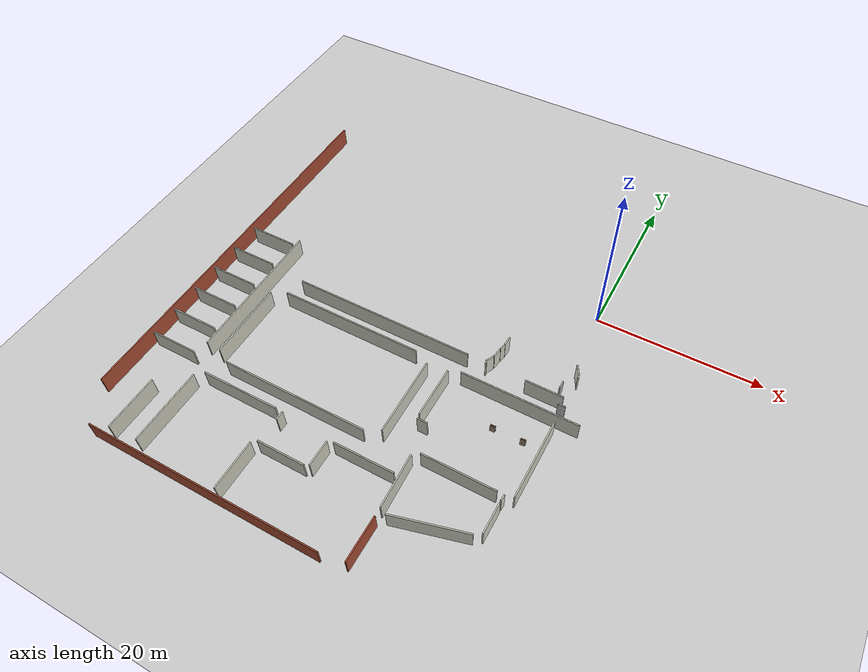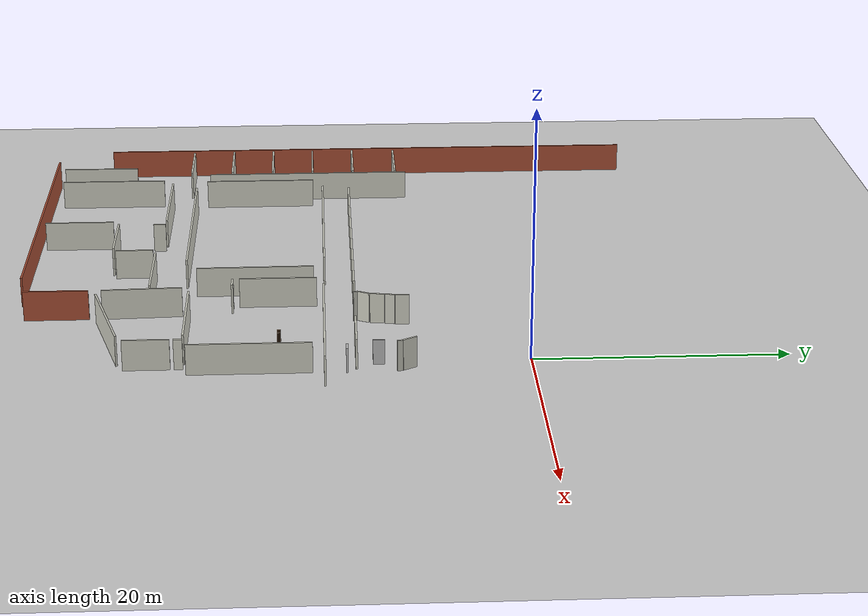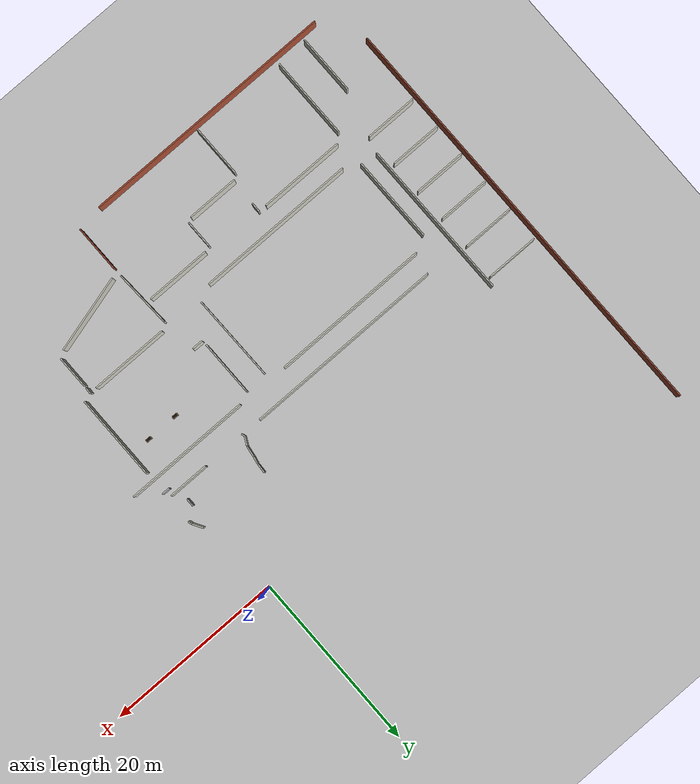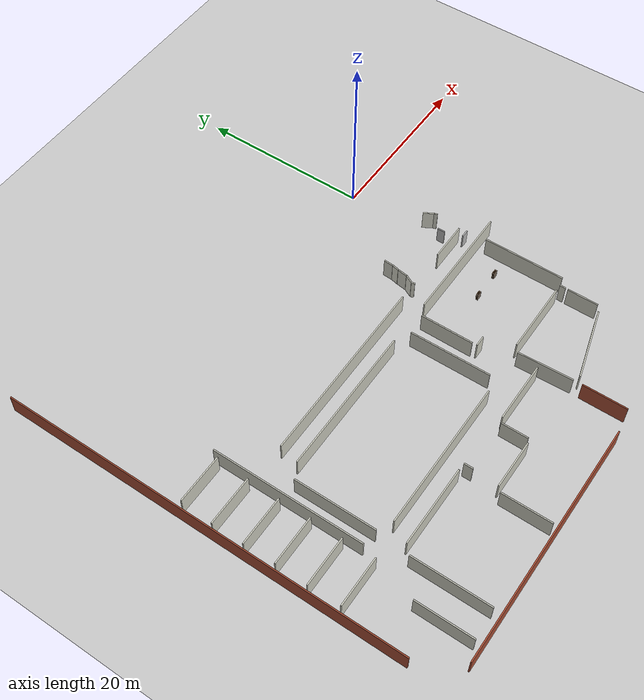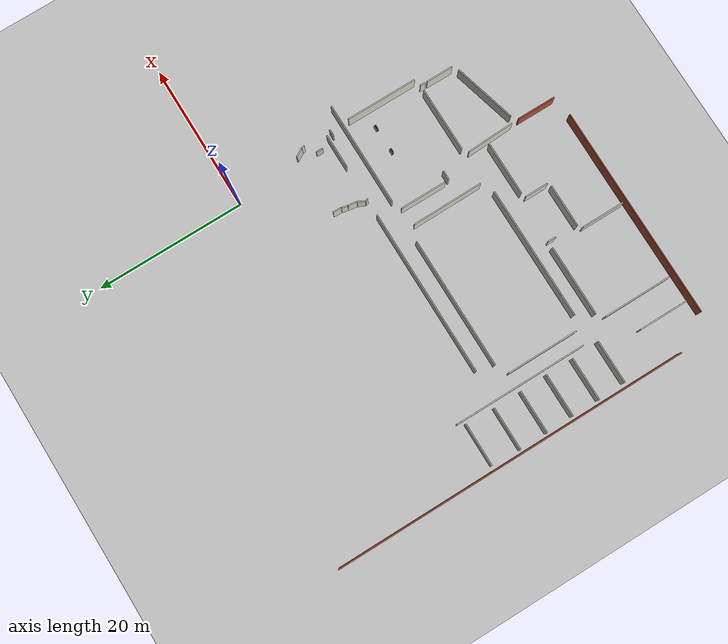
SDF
<sdf version="1.7">
 <world name="default">
  <model name="ground_plane">
   <static>1</static>
   <link name="link">
    <collision name="collision">
     <geometry><plane><normal>0 0 1</normal><size>100 100</size></plane></geometry>
     <surface><friction><ode><mu>100</mu><mu2>50</mu2></ode></friction></surface>
    </collision>
    <visual name="visual">
     <cast_shadows>0</cast_shadows>
     <geometry><plane><normal>0 0 1</normal><size>100 100</size></plane></geometry>
     <material>
      <ambient>1 1 1 1</ambient>
      <diffuse>0.8 0.8 0.8 1</diffuse>
      <specular>0.01 0.01 0.01 1</specular>
     </material>
    </visual>
   </link>
  </model>
  <model name="floorPlan">
   <pose>6.7155 -5.3556 0 0 -0 0</pose>
   <link name="Wall_127">
    <collision name="Wall_127_Collision">
     <geometry><box><size>9.58 0.15 2.5</size></box></geometry>
     <pose>0 0 1.25 0 -0 0</pose>
    </collision>
    <visual name="Wall_127_Visual">
     <pose>0 0 1.25 0 -0 0</pose>
     <geometry><box><size>9.58 0.15 2.5</size></box></geometry>
     <material>
      <script><uri>file://media/materials/scripts/gazebo.material</uri><name>Gazebo/PaintedWall</name></script>
      <ambient>1 1 1 1</ambient>
     </material>
     <meta><layer>0</layer></meta>
    </visual>
    <pose>-5.05877 -16.1593 0 0 0 -1.5708</pose>
   </link>
   <link name="Wall_129">
    <collision name="Wall_129_Collision">
     <geometry><box><size>14.16 0.15 2.5</size></box></geometry>
     <pose>0 0 1.25 0 -0 0</pose>
    </collision>
    <visual name="Wall_129_Visual">
     <pose>0 0 1.25 0 -0 0</pose>
     <geometry><box><size>14.16 0.15 2.5</size></box></geometry>
     <material>
      <script><uri>file://media/materials/scripts/gazebo.material</uri><name>Gazebo/PaintedWall</name></script>
      <ambient>1 1 1 1</ambient>
     </material>
     <meta><layer>0</layer></meta>
    </visual>
    <pose>-9.61757 -10.458 0 0 -0 3.14159</pose>
   </link>
   <link name="Wall_130">
    <collision name="Wall_130_Collision">
     <geometry><box><size>6.25 0.15 2.5</size></box></geometry>
     <pose>0 0 1.25 0 -0 0</pose>
    </collision>
    <visual name="Wall_130_Visual">
     <pose>0 0 1.25 0 -0 0</pose>
     <geometry><box><size>6.25 0.15 2.5</size></box></geometry>
     <material>
      <script><uri>file://media/materials/scripts/gazebo.material</uri><name>Gazebo/PaintedWall</name></script>
      <ambient>1 1 1 1</ambient>
     </material>
     <meta><layer>0</layer></meta>
    </visual>
    <pose>-18.0426 -14.133 0 0 0 -1.5708</pose>
   </link>
   <link name="Wall_131">
    <collision name="Wall_131_Collision">
     <geometry><box><size>1.25 0.15 2.5</size></box></geometry>
     <pose>0 0 1.25 0 -0 0</pose>
    </collision>
    <visual name="Wall_131_Visual">
     <pose>0 0 1.25 0 -0 0</pose>
     <geometry><box><size>1.25 0.15 2.5</size></box></geometry>
     <material>
      <script><uri>file://media/materials/scripts/gazebo.material</uri><name>Gazebo/PaintedWall</name></script>
      <ambient>1 1 1 1</ambient>
     </material>
     <meta><layer>0</layer></meta>
    </visual>
    <pose>-17.3676 -17.808 0 0 -0 0</pose>
   </link>
   <link name="Wall_133">
    <collision name="Wall_133_Collision">
     <geometry><box><size>8.75 0.15 2.5</size></box></geometry>
     <pose>0 0 1.25 0 -0 0</pose>
    </collision>
    <visual name="Wall_133_Visual">
     <pose>0 0 1.25 0 -0 0</pose>
     <geometry><box><size>8.75 0.15 2.5</size></box></geometry>
     <material>
      <script><uri>file://media/materials/scripts/gazebo.material</uri><name>Gazebo/PaintedWall</name></script>
      <ambient>1 1 1 1</ambient>
     </material>
     <meta><layer>0</layer></meta>
    </visual>
    <pose>-11.2193 -21.215 0 0 -0 0</pose>
   </link>
   <link name="Wall_134">
    <collision name="Wall_134_Collision">
     <geometry><box><size>0.69 0.15 2.5</size></box></geometry>
     <pose>0 0 1.25 0 -0 0</pose>
    </collision>
    <visual name="Wall_134_Visual">
     <pose>0 0 1.25 0 -0 0</pose>
     <geometry><box><size>0.69 0.15 2.5</size></box></geometry>
     <material>
      <script><uri>file://media/materials/scripts/gazebo.material</uri><name>Gazebo/PaintedWall</name></script>
      <ambient>1 1 1 1</ambient>
     </material>
     <meta><layer>0</layer></meta>
    </visual>
    <pose>-6.06127 -21.5509 0 0 0 -1.62113</pose>
   </link>
   <link name="Wall_137">
    <collision name="Wall_137_Collision">
     <geometry><box><size>6.42 0.15 2.5</size></box></geometry>
     <pose>0 0 1.25 0 -0 0</pose>
    </collision>
    <visual name="Wall_137_Visual">
     <pose>0 0 1.25 0 -0 0</pose>
     <geometry><box><size>6.42 0.15 2.5</size></box></geometry>
     <material>
      <script><uri>file://media/materials/scripts/gazebo.material</uri><name>Gazebo/PaintedWall</name></script>
      <ambient>1 1 1 1</ambient>
     </material>
     <meta><layer>0</layer></meta>
    </visual>
    <pose>-16.2349 -24.9897 0 0 0 -1.52859</pose>
   </link>
   <link name="Wall_139">
    <collision name="Wall_139_Collision">
     <geometry><box><size>7.29 0.15 2.5</size></box></geometry>
     <pose>0 0 1.25 0 -0 0</pose>
    </collision>
    <visual name="Wall_139_Visual">
     <pose>0 0 1.25 0 -0 0</pose>
     <geometry><box><size>7.29 0.15 2.5</size></box></geometry>
     <material>
      <script><uri>file://media/materials/scripts/gazebo.material</uri><name>Gazebo/PaintedWall</name></script>
      <ambient>1 1 1 1</ambient>
     </material>
     <meta><layer>0</layer></meta>
    </visual>
    <pose>-20.4877 -24.4086 0 0 -0 3.14159</pose>
   </link>
   <link name="Wall_140">
    <collision name="Wall_140_Collision">
     <geometry><box><size>3.12 0.15 2.5</size></box></geometry>
     <pose>0 0 1.25 0 -0 0</pose>
    </collision>
    <visual name="Wall_140_Visual">
     <pose>0 0 1.25 0 -0 0</pose>
     <geometry><box><size>3.12 0.15 2.5</size></box></geometry>
     <material>
      <script><uri>file://media/materials/scripts/gazebo.material</uri><name>Gazebo/PaintedWall</name></script>
      <ambient>1 1 1 1</ambient>
     </material>
     <meta><layer>0</layer></meta>
    </visual>
    <pose>-24.7877 -26.2086 0 0 0 -1.5708</pose>
   </link>
   <link name="Wall_141">
    <collision name="Wall_141_Collision">
     <geometry><box><size>5.83 0.15 2.5</size></box></geometry>
     <pose>0 0 1.25 0 -0 0</pose>
    </collision>
    <visual name="Wall_141_Visual">
     <pose>0 0 1.25 0 -0 0</pose>
     <geometry><box><size>5.83 0.15 2.5</size></box></geometry>
     <material>
      <script><uri>file://media/materials/scripts/gazebo.material</uri><name>Gazebo/PaintedWall</name></script>
      <ambient>1 1 1 1</ambient>
     </material>
     <meta><layer>0</layer></meta>
    </visual>
    <pose>-28.2127 -28.0086 0 0 -0 3.14159</pose>
   </link>
   <link name="Wall_142">
    <collision name="Wall_142_Collision">
     <geometry><box><size>5.83 0.15 2.5</size></box></geometry>
     <pose>0 0 1.25 0 -0 0</pose>
    </collision>
    <visual name="Wall_142_Visual">
     <pose>0 0 1.25 0 -0 0</pose>
     <geometry><box><size>5.83 0.15 2.5</size></box></geometry>
     <material>
      <script><uri>file://media/materials/scripts/gazebo.material</uri><name>Gazebo/PaintedWall</name></script>
      <ambient>1 1 1 1</ambient>
     </material>
     <meta><layer>0</layer></meta>
    </visual>
    <pose>-31.6377 -31.4336 0 0 0 -1.5708</pose>
   </link>
   <link name="Wall_144">
    <collision name="Wall_144_Collision">
     <geometry><box><size>1.04 0.15 2.5</size></box></geometry>
     <pose>0 0 1.25 0 -0 0</pose>
    </collision>
    <visual name="Wall_144_Visual">
     <pose>0 0 1.25 0 -0 0</pose>
     <geometry><box><size>1.04 0.15 2.5</size></box></geometry>
     <material>
      <script><uri>file://media/materials/scripts/gazebo.material</uri><name>Gazebo/PaintedWall</name></script>
      <ambient>1 1 1 1</ambient>
     </material>
     <meta><layer>0</layer></meta>
    </visual>
    <pose>-30.9008 -24.4847 0 0 -0 1.5708</pose>
   </link>
   <link name="Wall_146">
    <collision name="Wall_146_Collision">
     <geometry><box><size>9.58 0.15 2.5</size></box></geometry>
     <pose>0 0 1.25 0 -0 0</pose>
    </collision>
    <visual name="Wall_146_Visual">
     <pose>0 0 1.25 0 -0 0</pose>
     <geometry><box><size>9.58 0.15 2.5</size></box></geometry>
     <material>
      <script><uri>file://media/materials/scripts/gazebo.material</uri><name>Gazebo/PaintedWall</name></script>
      <ambient>1 1 1 1</ambient>
     </material>
     <meta><layer>0</layer></meta>
    </visual>
    <pose>-36.5758 -23.9347 0 0 -0 3.14159</pose>
   </link>
   <link name="Wall_147">
    <collision name="Wall_147_Collision">
     <geometry><box><size>9.16 0.15 2.5</size></box></geometry>
     <pose>0 0 1.25 0 -0 0</pose>
    </collision>
    <visual name="Wall_147_Visual">
     <pose>0 0 1.25 0 -0 0</pose>
     <geometry><box><size>9.16 0.15 2.5</size></box></geometry>
     <material>
      <script><uri>file://media/materials/scripts/gazebo.material</uri><name>Gazebo/PaintedWall</name></script>
      <ambient>1 1 1 1</ambient>
     </material>
     <meta><layer>0</layer></meta>
    </visual>
    <pose>-42.2508 -29.3597 0 0 0 -1.5708</pose>
   </link>
   <link name="Wall_149">
    <collision name="Wall_149_Collision">
     <geometry><box><size>6.66 0.15 2.5</size></box></geometry>
     <pose>0 0 1.25 0 -0 0</pose>
    </collision>
    <visual name="Wall_149_Visual">
     <pose>0 0 1.25 0 -0 0</pose>
     <geometry><box><size>6.66 0.15 2.5</size></box></geometry>
     <material>
      <script><uri>file://media/materials/scripts/gazebo.material</uri><name>Gazebo/PaintedWall</name></script>
      <ambient>1 1 1 1</ambient>
     </material>
     <meta><layer>0</layer></meta>
    </visual>
    <pose>-45.7877 -30.8032 0 0 0 -1.5708</pose>
   </link>
   <link name="Wall_151">
    <collision name="Wall_151_Collision">
     <geometry><box><size>5.83 0.15 2.5</size></box></geometry>
     <pose>0 0 1.25 0 -0 0</pose>
    </collision>
    <visual name="Wall_151_Visual">
     <pose>0 0 1.25 0 -0 0</pose>
     <geometry><box><size>5.83 0.15 2.5</size></box></geometry>
     <material>
      <script><uri>file://media/materials/scripts/gazebo.material</uri><name>Gazebo/PaintedWall</name></script>
      <ambient>1 1 1 1</ambient>
     </material>
     <meta><layer>0</layer></meta>
    </visual>
    <pose>-47.1627 -22.3564 0 0 -0 0</pose>
   </link>
   <link name="Wall_152">
    <collision name="Wall_152_Collision">
     <geometry><box><size>17.91 0.15 2.5</size></box></geometry>
     <pose>0 0 1.25 0 -0 0</pose>
    </collision>
    <visual name="Wall_152_Visual">
     <pose>0 0 1.25 0 -0 0</pose>
     <geometry><box><size>17.91 0.15 2.5</size></box></geometry>
     <material>
      <script><uri>file://media/materials/scripts/gazebo.material</uri><name>Gazebo/PaintedWall</name></script>
      <ambient>1 1 1 1</ambient>
     </material>
     <meta><layer>0</layer></meta>
    </visual>
    <pose>-43.7377 -11.6814 0 0 -0 1.5708</pose>
   </link>
   <link name="Wall_154">
    <collision name="Wall_154_Collision">
     <geometry><box><size>9.58 0.15 2.5</size></box></geometry>
     <pose>0 0 1.25 0 -0 0</pose>
    </collision>
    <visual name="Wall_154_Visual">
     <pose>0 0 1.25 0 -0 0</pose>
     <geometry><box><size>9.58 0.15 2.5</size></box></geometry>
     <material>
      <script><uri>file://media/materials/scripts/gazebo.material</uri><name>Gazebo/PaintedWall</name></script>
      <ambient>1 1 1 1</ambient>
     </material>
     <meta><layer>0</layer></meta>
    </visual>
    <pose>-20.5182 -16.0314 0 0 0 -1.5616</pose>
   </link>
   <link name="Wall_155">
    <collision name="Wall_155_Collision">
     <geometry><box><size>17.91 0.15 2.5</size></box></geometry>
     <pose>0 0 1.25 0 -0 0</pose>
    </collision>
    <visual name="Wall_155_Visual">
     <pose>0 0 1.25 0 -0 0</pose>
     <geometry><box><size>17.91 0.15 2.5</size></box></geometry>
     <material>
      <script><uri>file://media/materials/scripts/gazebo.material</uri><name>Gazebo/PaintedWall</name></script>
      <ambient>1 1 1 1</ambient>
     </material>
     <meta><layer>0</layer></meta>
    </visual>
    <pose>-31.1758 -21.7064 0 0 -0 3.14159</pose>
   </link>
   <link name="Wall_158">
    <collision name="Wall_158_Collision">
     <geometry><box><size>9.58 0.15 2.5</size></box></geometry>
     <pose>0 0 1.25 0 -0 0</pose>
    </collision>
    <visual name="Wall_158_Visual">
     <pose>0 0 1.25 0 -0 0</pose>
     <geometry><box><size>9.58 0.15 2.5</size></box></geometry>
     <material>
      <script><uri>file://media/materials/scripts/gazebo.material</uri><name>Gazebo/PaintedWall</name></script>
      <ambient>1 1 1 1</ambient>
     </material>
     <meta><layer>0</layer></meta>
    </visual>
    <pose>-41.8508 -16.0314 0 0 -0 1.5708</pose>
   </link>
   <link name="Wall_159">
    <collision name="Wall_159_Collision">
     <geometry><box><size>17.7 0.15 2.5</size></box></geometry>
     <pose>0 0 1.25 0 -0 0</pose>
    </collision>
    <visual name="Wall_159_Visual">
     <pose>0 0 1.25 0 -0 0</pose>
     <geometry><box><size>17.7 0.15 2.5</size></box></geometry>
     <material>
      <script><uri>file://media/materials/scripts/gazebo.material</uri><name>Gazebo/PaintedWall</name></script>
      <ambient>1 1 1 1</ambient>
     </material>
     <meta><layer>0</layer></meta>
    </visual>
    <pose>-31.3008 -10.3564 0 0 -0 0</pose>
   </link>
   <link name="Wall_163">
    <collision name="Wall_163_Collision">
     <geometry><box><size>4.58 0.15 2.5</size></box></geometry>
     <pose>0 0 1.25 0 -0 0</pose>
    </collision>
    <visual name="Wall_163_Visual">
     <pose>0 0 1.25 0 -0 0</pose>
     <geometry><box><size>4.58 0.15 2.5</size></box></geometry>
     <material>
      <script><uri>file://media/materials/scripts/gazebo.material</uri><name>Gazebo/PaintedWall</name></script>
      <ambient>1 1 1 1</ambient>
     </material>
     <meta><layer>0</layer></meta>
    </visual>
    <pose>-7.72942 -8.04986 0 0 -0 0</pose>
   </link>
   <link name="Wall_165">
    <collision name="Wall_165_Collision">
     <geometry><box><size>0.42 0.15 2.5</size></box></geometry>
     <pose>0 0 1.25 0 -0 0</pose>
    </collision>
    <visual name="Wall_165_Visual">
     <pose>0 0 1.25 0 -0 0</pose>
     <geometry><box><size>0.42 0.15 2.5</size></box></geometry>
     <material>
      <script><uri>file://media/materials/scripts/gazebo.material</uri><name>Gazebo/PaintedWall</name></script>
      <ambient>1 1 1 1</ambient>
     </material>
     <meta><layer>0</layer></meta>
    </visual>
    <pose>-5.09971 -4.78082 0 0 -0 1.8326</pose>
   </link>
   <link name="Wall_166">
    <collision name="Wall_166_Collision">
     <geometry><box><size>1.25 0.15 2.5</size></box></geometry>
     <pose>0 0 1.25 0 -0 0</pose>
    </collision>
    <visual name="Wall_166_Visual">
     <pose>0 0 1.25 0 -0 0</pose>
     <geometry><box><size>1.25 0.15 2.5</size></box></geometry>
     <material>
      <script><uri>file://media/materials/scripts/gazebo.material</uri><name>Gazebo/PaintedWall</name></script>
      <ambient>1 1 1 1</ambient>
     </material>
     <meta><layer>0</layer></meta>
    </visual>
    <pose>-5.4825 -4.02722 0 0 -0 2.0944</pose>
   </link>
   <link name="Wall_182">
    <collision name="Wall_182_Collision">
     <geometry><box><size>22.49 0.15 2.5</size></box></geometry>
     <pose>0 0 1.25 0 -0 0</pose>
    </collision>
    <visual name="Wall_182_Visual">
     <pose>0 0 1.25 0 -0 0</pose>
     <geometry><box><size>22.49 0.15 2.5</size></box></geometry>
     <material>
      <script><uri>file://media/materials/scripts/gazebo.material</uri><name>Gazebo/PaintedWall</name></script>
      <ambient>1 1 1 1</ambient>
     </material>
     <meta><layer>0</layer></meta>
    </visual>
    <pose>-28.3707 -8.0129 0 0 -0 3.14159</pose>
   </link>
   <link name="Wall_191">
    <collision name="Wall_191_Collision">
     <geometry><box><size>1.11 0.15 2.5</size></box></geometry>
     <pose>0 0 1.25 0 -0 0</pose>
    </collision>
    <visual name="Wall_191_Visual">
     <pose>0 0 1.25 0 -0 0</pose>
     <geometry><box><size>1.11 0.15 2.5</size></box></geometry>
     <material>
      <script><uri>file://media/materials/scripts/gazebo.material</uri><name>Gazebo/PaintedWall</name></script>
      <ambient>1 1 1 1</ambient>
     </material>
     <meta><layer>0</layer></meta>
    </visual>
    <pose>-14.0762 -4.2216 0 0 0 -1.62955</pose>
   </link>
   <link name="Wall_192">
    <collision name="Wall_192_Collision">
     <geometry><box><size>0.81 0.15 2.5</size></box></geometry>
     <pose>0 0 1.25 0 -0 0</pose>
    </collision>
    <visual name="Wall_192_Visual">
     <pose>0 0 1.25 0 -0 0</pose>
     <geometry><box><size>0.81 0.15 2.5</size></box></geometry>
     <material>
      <script><uri>file://media/materials/scripts/gazebo.material</uri><name>Gazebo/PaintedWall</name></script>
      <ambient>1 1 1 1</ambient>
     </material>
     <meta><layer>0</layer></meta>
    </visual>
    <pose>-14.1979 -5.2129 0 0 0 -1.78486</pose>
   </link>
   <link name="Wall_193">
    <collision name="Wall_193_Collision">
     <geometry><box><size>1.15 0.15 2.5</size></box></geometry>
     <pose>0 0 1.25 0 -0 0</pose>
    </collision>
    <visual name="Wall_193_Visual">
     <pose>0 0 1.25 0 -0 0</pose>
     <geometry><box><size>1.15 0.15 2.5</size></box></geometry>
     <material>
      <script><uri>file://media/materials/scripts/gazebo.material</uri><name>Gazebo/PaintedWall</name></script>
      <ambient>1 1 1 1</ambient>
     </material>
     <meta><layer>0</layer></meta>
    </visual>
    <pose>-14.3718 -6.2216 0 0 0 -1.71269</pose>
   </link>
   <link name="Wall_194">
    <collision name="Wall_194_Collision">
     <geometry><box><size>1.01 0.15 2.5</size></box></geometry>
     <pose>0 0 1.25 0 -0 0</pose>
    </collision>
    <visual name="Wall_194_Visual">
     <pose>0 0 1.25 0 -0 0</pose>
     <geometry><box><size>1.01 0.15 2.5</size></box></geometry>
     <material>
      <script><uri>file://media/materials/scripts/gazebo.material</uri><name>Gazebo/PaintedWall</name></script>
      <ambient>1 1 1 1</ambient>
     </material>
     <meta><layer>0</layer></meta>
    </visual>
    <pose>-14.7022 -7.29986 0 0 0 -2.04915</pose>
   </link>
   <link name="Wall_195">
    <collision name="Wall_195_Collision">
     <geometry><box><size>0.4 0.15 2.5</size></box></geometry>
     <pose>0 0 1.25 0 -0 0</pose>
    </collision>
    <visual name="Wall_195_Visual">
     <pose>0 0 1.25 0 -0 0</pose>
     <geometry><box><size>0.4 0.15 2.5</size></box></geometry>
     <material>
      <script><uri>file://media/materials/scripts/gazebo.material</uri><name>Gazebo/PaintedWall</name></script>
      <ambient>1 1 1 1</ambient>
     </material>
     <meta><layer>0</layer></meta>
    </visual>
    <pose>-14.8935 -7.92595 0 0 0 -1.24905</pose>
   </link>
   <link name="Wall_250">
    <collision name="Wall_250_Collision">
     <geometry><box><size>5.83 0.15 2.5</size></box></geometry>
     <pose>0 0 1.25 0 -0 0</pose>
    </collision>
    <visual name="Wall_250_Visual">
     <pose>0 0 1.25 0 -0 0</pose>
     <geometry><box><size>5.83 0.15 2.5</size></box></geometry>
     <material>
      <script><uri>file://media/materials/scripts/gazebo.material</uri><name>Gazebo/PaintedWall</name></script>
      <ambient>1 1 1 1</ambient>
     </material>
     <meta><layer>0</layer></meta>
    </visual>
    <pose>-47.1009 -3.6289 0 0 -0 0</pose>
   </link>
   <link name="Wall_253">
    <collision name="Wall_253_Collision">
     <geometry><box><size>5.83 0.15 2.5</size></box></geometry>
     <pose>0 0 1.25 0 -0 0</pose>
    </collision>
    <visual name="Wall_253_Visual">
     <pose>0 0 1.25 0 -0 0</pose>
     <geometry><box><size>5.83 0.15 2.5</size></box></geometry>
     <material>
      <script><uri>file://media/materials/scripts/gazebo.material</uri><name>Gazebo/PaintedWall</name></script>
      <ambient>1 1 1 1</ambient>
     </material>
     <meta><layer>0</layer></meta>
    </visual>
    <pose>-47.3107 -7.5117 0 0 -0 0</pose>
   </link>
   <link name="Wall_255">
    <collision name="Wall_255_Collision">
     <geometry><box><size>5.83 0.15 2.5</size></box></geometry>
     <pose>0 0 1.25 0 -0 0</pose>
    </collision>
    <visual name="Wall_255_Visual">
     <pose>0 0 1.25 0 -0 0</pose>
     <geometry><box><size>5.83 0.15 2.5</size></box></geometry>
     <material>
      <script><uri>file://media/materials/scripts/gazebo.material</uri><name>Gazebo/PaintedWall</name></script>
      <ambient>1 1 1 1</ambient>
     </material>
     <meta><layer>0</layer></meta>
    </visual>
    <pose>-47.3107 -11.2546 0 0 -0 0</pose>
   </link>
   <link name="Wall_257">
    <collision name="Wall_257_Collision">
     <geometry><box><size>5.83 0.15 2.5</size></box></geometry>
     <pose>0 0 1.25 0 -0 0</pose>
    </collision>
    <visual name="Wall_257_Visual">
     <pose>0 0 1.25 0 -0 0</pose>
     <geometry><box><size>5.83 0.15 2.5</size></box></geometry>
     <material>
      <script><uri>file://media/materials/scripts/gazebo.material</uri><name>Gazebo/PaintedWall</name></script>
      <ambient>1 1 1 1</ambient>
     </material>
     <meta><layer>0</layer></meta>
    </visual>
    <pose>-47.2408 -14.9275 0 0 -0 0</pose>
   </link>
   <link name="Wall_259">
    <collision name="Wall_259_Collision">
     <geometry><box><size>5.83 0.15 2.5</size></box></geometry>
     <pose>0 0 1.25 0 -0 0</pose>
    </collision>
    <visual name="Wall_259_Visual">
     <pose>0 0 1.25 0 -0 0</pose>
     <geometry><box><size>5.83 0.15 2.5</size></box></geometry>
     <material>
      <script><uri>file://media/materials/scripts/gazebo.material</uri><name>Gazebo/PaintedWall</name></script>
      <ambient>1 1 1 1</ambient>
     </material>
     <meta><layer>0</layer></meta>
    </visual>
    <pose>-47.2758 -18.6354 0 0 -0 0</pose>
   </link>
   <link name="Wall_92">
    <collision name="Wall_92_Collision">
     <geometry><box><size>3.62 0.15 2.5</size></box></geometry>
     <pose>0 0 1.25 0 -0 0</pose>
    </collision>
    <visual name="Wall_92_Visual">
     <pose>0 0 1.25 0 -0 0</pose>
     <geometry><box><size>3.62 0.15 2.5</size></box></geometry>
     <material>
      <script><uri>file://media/materials/scripts/gazebo.material</uri><name>Gazebo/PaintedWall</name></script>
      <ambient>1 1 1 1</ambient>
     </material>
     <meta><layer>0</layer></meta>
    </visual>
    <pose>-6.0782 -23.9862 0 0 0 -1.5708</pose>
   </link>
   <link name="Wall_93">
    <collision name="Wall_93_Collision">
     <geometry><box><size>8.75 0.15 2.5</size></box></geometry>
     <pose>0 0 1.25 0 -0 0</pose>
    </collision>
    <visual name="Wall_93_Visual">
     <pose>0 0 1.25 0 -0 0</pose>
     <geometry><box><size>8.75 0.15 2.5</size></box></geometry>
     <material>
      <script><uri>file://media/materials/scripts/gazebo.material</uri><name>Gazebo/PaintedWall</name></script>
      <ambient>1 1 1 1</ambient>
     </material>
     <meta><layer>0</layer></meta>
    </visual>
    <pose>-11.0769 -27.425 0 0 0 -2.87979</pose>
   </link>
   <link name="Wall_95">
    <collision name="Wall_95_Collision">
     <geometry><box><size>5.21 0.15 2.5</size></box></geometry>
     <pose>0 0 1.25 0 -0 0</pose>
    </collision>
    <visual name="Wall_95_Visual">
     <pose>0 0 1.25 0 -0 0</pose>
     <geometry><box><size>5.21 0.15 2.5</size></box></geometry>
     <material>
      <script><uri>file://media/materials/scripts/gazebo.material</uri><name>Gazebo/Bricks</name></script>
      <ambient>1 1 1 1</ambient>
     </material>
     <meta><layer>0</layer></meta>
    </visual>
    <pose>-16.0755 -31.8144 0 0 0 -1.5708</pose>
   </link>
   <link name="Wall_97">
    <collision name="Wall_97_Collision">
     <geometry><box><size>28.95 0.15 2.5</size></box></geometry>
     <pose>0 0 1.25 0 -0 0</pose>
    </collision>
    <visual name="Wall_97_Visual">
     <pose>0 0 1.25 0 -0 0</pose>
     <geometry><box><size>28.95 0.15 2.5</size></box></geometry>
     <material>
      <script><uri>file://media/materials/scripts/gazebo.material</uri><name>Gazebo/Bricks</name></script>
      <ambient>1 1 1 1</ambient>
     </material>
     <meta><layer>0</layer></meta>
    </visual>
    <pose>-33.3755 -34.8644 0 0 -0 3.14159</pose>
   </link>
   <link name="Wall_99">
    <collision name="Wall_99_Collision">
     <geometry><box><size>48.11 0.15 2.5</size></box></geometry>
     <pose>0 0 1.25 0 -0 0</pose>
    </collision>
    <visual name="Wall_99_Visual">
     <pose>0 0 1.25 0 -0 0</pose>
     <geometry><box><size>48.11 0.15 2.5</size></box></geometry>
     <material>
      <script><uri>file://media/materials/scripts/gazebo.material</uri><name>Gazebo/Bricks</name></script>
      <ambient>1 1 1 1</ambient>
     </material>
     <meta><layer>0</layer></meta>
    </visual>
    <pose>-50.6755 -6.06439 0 0 -0 1.5708</pose>
   </link>
   <static>1</static>
  </model>
  <model name="6_Cube_StorageE">
   <link name="Wall_0">
    <pose>0 0 0.01 0 -0 0</pose>
    <inertial>
     <mass>1.6201</mass>
     <inertia><ixx>0.0119</ixx><iyy>0.0631</iyy><izz>0.0513</izz><ixy>0</ixy><ixz>0</ixz><iyz>0</iyz></inertia>
    </inertial>
    <collision name="Wall_0_Collision"><geometry><box><size>0.616 0.296 0.02</size></box></geometry></collision>
    <visual name="Wall_0_Visual">
     <geometry><box><size>0.616 0.296 0.02</size></box></geometry>
     <material>
      <script><uri>file://media/materials/scripts/gazebo.material</uri><name>Gazebo/Grey</name></script>
      <ambient>0.105882 0.0509804 0 1</ambient>
     </material>
    </visual>
   </link>
   <joint name="0_2" type="fixed">
    <pose>-0.308 0 0 0 -0 0</pose>
    <parent>Wall_2</parent>
    <child>Wall_0</child>
    <axis><xyz>1 0 0</xyz><limit><lower>-1e+16</lower><upper>1e+16</upper></limit></axis>
   </joint>
   <joint name="0_12" type="fixed">
    <parent>Wall_12</parent>
    <child>Wall_0</child>
    <axis><xyz>0 0 1</xyz><limit><lower>-1e+16</lower><upper>1e+16</upper></limit></axis>
   </joint>
   <joint name="0_4" type="fixed">
    <pose>0.308 0 0 0 -0 0</pose>
    <parent>Wall_4</parent>
    <child>Wall_0</child>
    <axis><xyz>1 0 0</xyz><limit><lower>-1e+16</lower><upper>1e+16</upper></limit></axis>
   </joint>
   <link name="Wall_10">
    <pose>0 0 0.61 0 -0 0</pose>
    <inertial>
     <mass>1.6201</mass>
     <inertia><ixx>0.0119</ixx><iyy>0.0631</iyy><izz>0.0513</izz><ixy>0</ixy><ixz>0</ixz><iyz>0</iyz></inertia>
    </inertial>
    <collision name="Wall_10_Collision"><geometry><box><size>0.616 0.296 0.02</size></box></geometry></collision>
    <visual name="Wall_10_Visual">
     <geometry><box><size>0.616 0.296 0.02</size></box></geometry>
     <material>
      <script><uri>file://media/materials/scripts/gazebo.material</uri><name>Gazebo/Grey</name></script>
      <ambient>0.105882 0.0509804 0 1</ambient>
     </material>
    </visual>
   </link>
   <joint name="10_2" type="fixed">
    <pose>-0.308 0 0 0 -0 0</pose>
    <parent>Wall_2</parent>
    <child>Wall_10</child>
    <axis><xyz>1 0 0</xyz><limit><lower>-1e+16</lower><upper>1e+16</upper></limit></axis>
   </joint>
   <joint name="10_12" type="fixed">
    <parent>Wall_12</parent>
    <child>Wall_10</child>
    <axis><xyz>0 0 1</xyz><limit><lower>-1e+16</lower><upper>1e+16</upper></limit></axis>
   </joint>
   <joint name="10_4" type="fixed">
    <pose>0.308 0 0 0 -0 0</pose>
    <parent>Wall_4</parent>
    <child>Wall_10</child>
    <axis><xyz>1 0 0</xyz><limit><lower>-1e+16</lower><upper>1e+16</upper></limit></axis>
   </joint>
   <link name="Wall_12">
    <pose>0 0 0.4575 0 -0 0</pose>
    <inertial>
     <mass>2.4065</mass>
     <inertia><ixx>0.0177</ixx><iyy>0.1855</iyy><izz>0.168</izz><ixy>0</ixy><ixz>0</ixz><iyz>0</iyz></inertia>
    </inertial>
    <collision name="Wall_12_Collision"><geometry><box><size>0.02 0.296 0.915</size></box></geometry></collision>
    <visual name="Wall_12_Visual">
     <geometry><box><size>0.02 0.296 0.915</size></box></geometry>
     <material>
      <script><uri>file://media/materials/scripts/gazebo.material</uri><name>Gazebo/Grey</name></script>
      <ambient>0.105882 0.0509804 0 1</ambient>
     </material>
    </visual>
   </link>
   <link name="Wall_2">
    <pose>-0.298 0 0.4575 0 -0 0</pose>
    <inertial>
     <mass>2.4065</mass>
     <inertia><ixx>0.0177</ixx><iyy>0.1855</iyy><izz>0.168</izz><ixy>0</ixy><ixz>0</ixz><iyz>0</iyz></inertia>
    </inertial>
    <collision name="Wall_2_Collision"><geometry><box><size>0.02 0.296 0.915</size></box></geometry></collision>
    <visual name="Wall_2_Visual">
     <geometry><box><size>0.02 0.296 0.915</size></box></geometry>
     <material>
      <script><uri>file://media/materials/scripts/gazebo.material</uri><name>Gazebo/Grey</name></script>
      <ambient>0.105882 0.0509804 0 1</ambient>
     </material>
    </visual>
   </link>
   <link name="Wall_4">
    <pose>0.298 0 0.4575 0 -0 0</pose>
    <inertial>
     <mass>2.4065</mass>
     <inertia><ixx>0.0177</ixx><iyy>0.1855</iyy><izz>0.168</izz><ixy>0</ixy><ixz>0</ixz><iyz>0</iyz></inertia>
    </inertial>
    <collision name="Wall_4_Collision"><geometry><box><size>0.02 0.296 0.915</size></box></geometry></collision>
    <visual name="Wall_4_Visual">
     <geometry><box><size>0.02 0.296 0.915</size></box></geometry>
     <material>
      <script><uri>file://media/materials/scripts/gazebo.material</uri><name>Gazebo/Grey</name></script>
      <ambient>0.105882 0.0509804 0 1</ambient>
     </material>
    </visual>
   </link>
   <link name="Wall_6">
    <pose>0 0 0.905 0 -0 0</pose>
    <inertial>
     <mass>1.6201</mass>
     <inertia><ixx>0.0119</ixx><iyy>0.0631</iyy><izz>0.0513</izz><ixy>0</ixy><ixz>0</ixz><iyz>0</iyz></inertia>
    </inertial>
    <collision name="Wall_6_Collision"><geometry><box><size>0.616 0.296 0.02</size></box></geometry></collision>
    <visual name="Wall_6_Visual">
     <geometry><box><size>0.616 0.296 0.02</size></box></geometry>
     <material>
      <script><uri>file://media/materials/scripts/gazebo.material</uri><name>Gazebo/Grey</name></script>
      <ambient>0.105882 0.0509804 0 1</ambient>
     </material>
    </visual>
   </link>
   <joint name="6_2" type="fixed">
    <pose>-0.308 0 0 0 -0 0</pose>
    <parent>Wall_2</parent>
    <child>Wall_6</child>
    <axis><xyz>2 0 0</xyz><limit><lower>-1e+16</lower><upper>1e+16</upper></limit></axis>
   </joint>
   <joint name="6_12" type="fixed">
    <parent>Wall_12</parent>
    <child>Wall_6</child>
    <axis><xyz>0 0 1</xyz><limit><lower>-1e+16</lower><upper>1e+16</upper></limit></axis>
   </joint>
   <joint name="6_4" type="fixed">
    <pose>0.308 0 0 0 -0 0</pose>
    <parent>Wall_4</parent>
    <child>Wall_6</child>
    <axis><xyz>1 0 0</xyz><limit><lower>-1e+16</lower><upper>1e+16</upper></limit></axis>
   </joint>
   <link name="Wall_8">
    <pose>0 0 0.305 0 -0 0</pose>
    <inertial>
     <mass>1.6201</mass>
     <inertia><ixx>0.0119</ixx><iyy>0.0631</iyy><izz>0.0513</izz><ixy>0</ixy><ixz>0</ixz><iyz>0</iyz></inertia>
    </inertial>
    <collision name="Wall_8_Collision"><geometry><box><size>0.616 0.296 0.02</size></box></geometry></collision>
    <visual name="Wall_8_Visual">
     <geometry><box><size>0.616 0.296 0.02</size></box></geometry>
     <material>
      <script><uri>file://media/materials/scripts/gazebo.material</uri><name>Gazebo/Grey</name></script>
      <ambient>0.105882 0.0509804 0 1</ambient>
     </material>
    </visual>
   </link>
   <joint name="8_2" type="fixed">
    <pose>-0.308 0 0 0 -0 0</pose>
    <parent>Wall_2</parent>
    <child>Wall_8</child>
    <axis><xyz>1 0 0</xyz><limit><lower>-1e+16</lower><upper>1e+16</upper></limit></axis>
   </joint>
   <joint name="8_12" type="fixed">
    <parent>Wall_12</parent>
    <child>Wall_8</child>
    <axis><xyz>0 0 1</xyz><limit><lower>-1e+16</lower><upper>1e+16</upper></limit></axis>
   </joint>
   <joint name="8_4" type="fixed">
    <pose>0.308 0 0 0 -0 0</pose>
    <parent>Wall_4</parent>
    <child>Wall_8</child>
    <axis><xyz>1 0 0</xyz><limit><lower>-1e+16</lower><upper>1e+16</upper></limit></axis>
   </joint>
   <static>1</static>
   <pose>-4.17778 -19.3673 0 0 -0 0</pose>
  </model>
  <model name="6_Cube_StorageE_clone">
   <link name="Wall_0">
    <pose>0 0 0.01 0 -0 0</pose>
    <inertial>
     <mass>1.6201</mass>
     <inertia><ixx>0.0119</ixx><iyy>0.0631</iyy><izz>0.0513</izz><ixy>0</ixy><ixz>0</ixz><iyz>0</iyz></inertia>
    </inertial>
    <collision name="Wall_0_Collision"><geometry><box><size>0.616 0.296 0.02</size></box></geometry></collision>
    <visual name="Wall_0_Visual">
     <geometry><box><size>0.616 0.296 0.02</size></box></geometry>
     <material>
      <script><uri>file://media/materials/scripts/gazebo.material</uri><name>Gazebo/Grey</name></script>
      <ambient>0.105882 0.0509804 0 1</ambient>
     </material>
    </visual>
   </link>
   <joint name="0_2" type="fixed">
    <pose>-0.308 0 0 0 -0 0</pose>
    <parent>Wall_2</parent>
    <child>Wall_0</child>
    <axis><xyz>1 0 0</xyz><limit><lower>-1e+16</lower><upper>1e+16</upper></limit></axis>
   </joint>
   <joint name="0_12" type="fixed">
    <parent>Wall_12</parent>
    <child>Wall_0</child>
    <axis><xyz>0 0 1</xyz><limit><lower>-1e+16</lower><upper>1e+16</upper></limit></axis>
   </joint>
   <joint name="0_4" type="fixed">
    <pose>0.308 0 0 0 -0 0</pose>
    <parent>Wall_4</parent>
    <child>Wall_0</child>
    <axis><xyz>1 0 0</xyz><limit><lower>-1e+16</lower><upper>1e+16</upper></limit></axis>
   </joint>
   <link name="Wall_10">
    <pose>0 0 0.61 0 -0 0</pose>
    <inertial>
     <mass>1.6201</mass>
     <inertia><ixx>0.0119</ixx><iyy>0.0631</iyy><izz>0.0513</izz><ixy>0</ixy><ixz>0</ixz><iyz>0</iyz></inertia>
    </inertial>
    <collision name="Wall_10_Collision"><geometry><box><size>0.616 0.296 0.02</size></box></geometry></collision>
    <visual name="Wall_10_Visual">
     <geometry><box><size>0.616 0.296 0.02</size></box></geometry>
     <material>
      <script><uri>file://media/materials/scripts/gazebo.material</uri><name>Gazebo/Grey</name></script>
      <ambient>0.105882 0.0509804 0 1</ambient>
     </material>
    </visual>
   </link>
   <joint name="10_2" type="fixed">
    <pose>-0.308 0 0 0 -0 0</pose>
    <parent>Wall_2</parent>
    <child>Wall_10</child>
    <axis><xyz>1 0 0</xyz><limit><lower>-1e+16</lower><upper>1e+16</upper></limit></axis>
   </joint>
   <joint name="10_12" type="fixed">
    <parent>Wall_12</parent>
    <child>Wall_10</child>
    <axis><xyz>0 0 1</xyz><limit><lower>-1e+16</lower><upper>1e+16</upper></limit></axis>
   </joint>
   <joint name="10_4" type="fixed">
    <pose>0.308 0 0 0 -0 0</pose>
    <parent>Wall_4</parent>
    <child>Wall_10</child>
    <axis><xyz>1 0 0</xyz><limit><lower>-1e+16</lower><upper>1e+16</upper></limit></axis>
   </joint>
   <link name="Wall_12">
    <pose>0 0 0.4575 0 -0 0</pose>
    <inertial>
     <mass>2.4065</mass>
     <inertia><ixx>0.0177</ixx><iyy>0.1855</iyy><izz>0.168</izz><ixy>0</ixy><ixz>0</ixz><iyz>0</iyz></inertia>
    </inertial>
    <collision name="Wall_12_Collision"><geometry><box><size>0.02 0.296 0.915</size></box></geometry></collision>
    <visual name="Wall_12_Visual">
     <geometry><box><size>0.02 0.296 0.915</size></box></geometry>
     <material>
      <script><uri>file://media/materials/scripts/gazebo.material</uri><name>Gazebo/Grey</name></script>
      <ambient>0.105882 0.0509804 0 1</ambient>
     </material>
    </visual>
   </link>
   <link name="Wall_2">
    <pose>-0.298 0 0.4575 0 -0 0</pose>
    <inertial>
     <mass>2.4065</mass>
     <inertia><ixx>0.0177</ixx><iyy>0.1855</iyy><izz>0.168</izz><ixy>0</ixy><ixz>0</ixz><iyz>0</iyz></inertia>
    </inertial>
    <collision name="Wall_2_Collision"><geometry><box><size>0.02 0.296 0.915</size></box></geometry></collision>
    <visual name="Wall_2_Visual">
     <geometry><box><size>0.02 0.296 0.915</size></box></geometry>
     <material>
      <script><uri>file://media/materials/scripts/gazebo.material</uri><name>Gazebo/Grey</name></script>
      <ambient>0.105882 0.0509804 0 1</ambient>
     </material>
    </visual>
   </link>
   <link name="Wall_4">
    <pose>0.298 0 0.4575 0 -0 0</pose>
    <inertial>
     <mass>2.4065</mass>
     <inertia><ixx>0.0177</ixx><iyy>0.1855</iyy><izz>0.168</izz><ixy>0</ixy><ixz>0</ixz><iyz>0</iyz></inertia>
    </inertial>
    <collision name="Wall_4_Collision"><geometry><box><size>0.02 0.296 0.915</size></box></geometry></collision>
    <visual name="Wall_4_Visual">
     <geometry><box><size>0.02 0.296 0.915</size></box></geometry>
     <material>
      <script><uri>file://media/materials/scripts/gazebo.material</uri><name>Gazebo/Grey</name></script>
      <ambient>0.105882 0.0509804 0 1</ambient>
     </material>
    </visual>
   </link>
   <link name="Wall_6">
    <pose>0 0 0.905 0 -0 0</pose>
    <inertial>
     <mass>1.6201</mass>
     <inertia><ixx>0.0119</ixx><iyy>0.0631</iyy><izz>0.0513</izz><ixy>0</ixy><ixz>0</ixz><iyz>0</iyz></inertia>
    </inertial>
    <collision name="Wall_6_Collision"><geometry><box><size>0.616 0.296 0.02</size></box></geometry></collision>
    <visual name="Wall_6_Visual">
     <geometry><box><size>0.616 0.296 0.02</size></box></geometry>
     <material>
      <script><uri>file://media/materials/scripts/gazebo.material</uri><name>Gazebo/Grey</name></script>
      <ambient>0.105882 0.0509804 0 1</ambient>
     </material>
    </visual>
   </link>
   <joint name="6_2" type="fixed">
    <pose>-0.308 0 0 0 -0 0</pose>
    <parent>Wall_2</parent>
    <child>Wall_6</child>
    <axis><xyz>2 0 0</xyz><limit><lower>-1e+16</lower><upper>1e+16</upper></limit></axis>
   </joint>
   <joint name="6_12" type="fixed">
    <parent>Wall_12</parent>
    <child>Wall_6</child>
    <axis><xyz>0 0 1</xyz><limit><lower>-1e+16</lower><upper>1e+16</upper></limit></axis>
   </joint>
   <joint name="6_4" type="fixed">
    <pose>0.308 0 0 0 -0 0</pose>
    <parent>Wall_4</parent>
    <child>Wall_6</child>
    <axis><xyz>1 0 0</xyz><limit><lower>-1e+16</lower><upper>1e+16</upper></limit></axis>
   </joint>
   <link name="Wall_8">
    <pose>0 0 0.305 0 -0 0</pose>
    <inertial>
     <mass>1.6201</mass>
     <inertia><ixx>0.0119</ixx><iyy>0.0631</iyy><izz>0.0513</izz><ixy>0</ixy><ixz>0</ixz><iyz>0</iyz></inertia>
    </inertial>
    <collision name="Wall_8_Collision"><geometry><box><size>0.616 0.296 0.02</size></box></geometry></collision>
    <visual name="Wall_8_Visual">
     <geometry><box><size>0.616 0.296 0.02</size></box></geometry>
     <material>
      <script><uri>file://media/materials/scripts/gazebo.material</uri><name>Gazebo/Grey</name></script>
      <ambient>0.105882 0.0509804 0 1</ambient>
     </material>
    </visual>
   </link>
   <joint name="8_2" type="fixed">
    <pose>-0.308 0 0 0 -0 0</pose>
    <parent>Wall_2</parent>
    <child>Wall_8</child>
    <axis><xyz>1 0 0</xyz><limit><lower>-1e+16</lower><upper>1e+16</upper></limit></axis>
   </joint>
   <joint name="8_12" type="fixed">
    <parent>Wall_12</parent>
    <child>Wall_8</child>
    <axis><xyz>0 0 1</xyz><limit><lower>-1e+16</lower><upper>1e+16</upper></limit></axis>
   </joint>
   <joint name="8_4" type="fixed">
    <pose>0.308 0 0 0 -0 0</pose>
    <parent>Wall_4</parent>
    <child>Wall_8</child>
    <axis><xyz>1 0 0</xyz><limit><lower>-1e+16</lower><upper>1e+16</upper></limit></axis>
   </joint>
   <static>1</static>
   <pose>-0.621224 -19.3296 0 0 -0 0</pose>
  </model>
  <model name="door_clone_5">
   <link name="link_0">
    <visual name="visual">
     <pose>0 0 1 0 -0 0</pose>
     <geometry><box><size>0.9 0.15 2</size></box></geometry>
     <material>
      <script>
       <uri>model://door/materials/scripts</uri>
       <uri>model://door/materials/textures</uri>
       <name>door</name>
      </script>
     </material>
    </visual>
    <collision name="collision">
     <pose>0 0 1 0 -0 0</pose>
     <geometry><box><size>0.9 0.15 2</size></box></geometry>
    </collision>
   </link>
   <static>1</static>
   <pose>0.308515 -11.7047 0 0 -0 1.56387</pose>
  </model>
  <model name="door_clone_10_clone_1">
   <link name="link_0">
    <visual name="visual">
     <pose>0 0 1 0 -0 0</pose>
     <geometry><box><size>0.9 0.15 2</size></box></geometry>
     <material>
      <script>
       <uri>model://door/materials/scripts</uri>
       <uri>model://door/materials/textures</uri>
       <name>door</name>
      </script>
     </material>
    </visual>
    <collision name="collision">
     <pose>0 0 1 0 -0 0</pose>
     <geometry><box><size>0.9 0.15 2</size></box></geometry>
    </collision>
   </link>
   <static>1</static>
   <pose>1.41617 -14.1346 0 0 0 -0.012925</pose>
  </model>
 </world>
</sdf>
